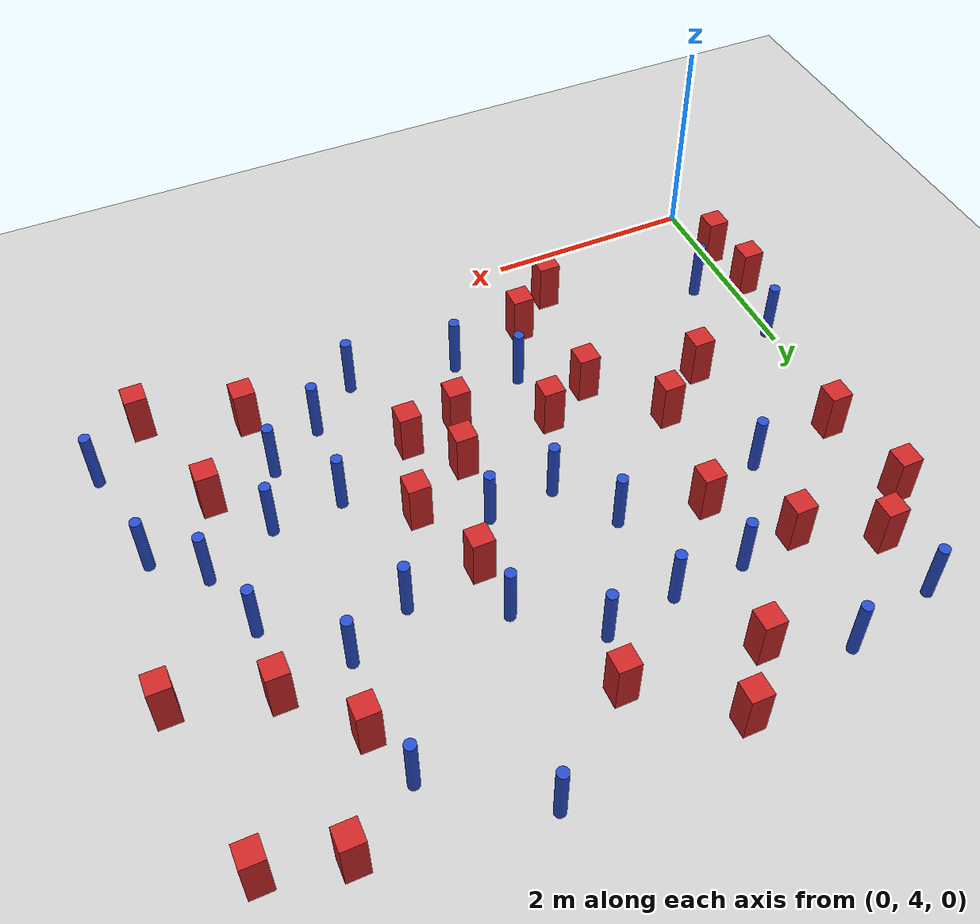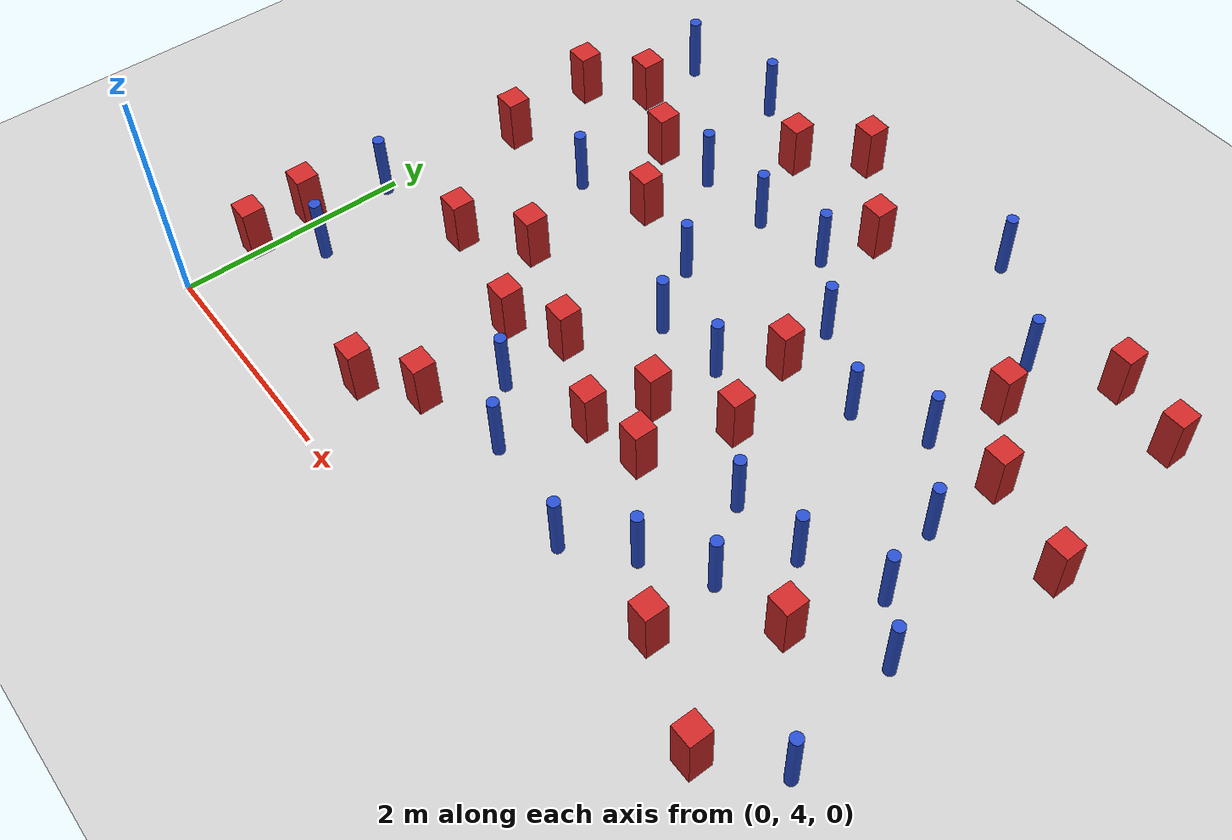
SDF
<sdf version="1.6">
 <world name="default">
  <model name="ground_plane">
   <static>1</static>
   <link name="link">
    <collision name="collision">
     <geometry><plane><normal>0 0 1</normal><size>100 100</size></plane></geometry>
     <surface><friction><ode><mu>100</mu><mu2>50</mu2></ode></friction></surface>
    </collision>
    <visual name="visual">
     <cast_shadows>0</cast_shadows>
     <geometry><plane><normal>0 0 1</normal><size>100 100</size></plane></geometry>
     <material>
      <ambient>1.0 1.0 1.0 1.0</ambient>
      <diffuse>0.8 0.8 0.8 1.0</diffuse>
      <specular>0.01 0.01 0.01 1.000000</specular>
     </material>
    </visual>
   </link>
  </model>
  <model name="square_post_obstacle0">
   <static>true</static>
   <pose>1.99020298457 8.9363868212 1.91545236811e-07 -7.35059704564e-06 1.12565212e-07 2.39332434364e-05</pose>
   <link name="link">
    <pose>0 0 0.25 0 -0 0</pose>
    <inertial>
     <mass>100</mass>
     <inertia>
      <ixx>0.166667</ixx>
      <ixy>0</ixy>
      <ixz>0</ixz>
      <iyy>0.166667</iyy>
      <iyz>0</iyz>
      <izz>0.166667</izz>
     </inertia>
    </inertial>
    <collision name="collision"><geometry><box><size>.2 .2 .5</size></box></geometry></collision>
    <visual name="visual">
     <geometry><box><size>.2 .2 .5</size></box></geometry>
     <material>
      <script><name>Gazebo/Red</name><uri>file://media/materials/scripts/gazebo.material</uri></script>
     </material>
    </visual>
   </link>
  </model>
  <model name="pole_obstacle6">
   <static>true</static>
   <pose>6.16980746209 6.17317058995 7.38925637345e-09 -8.47170692796e-08 1.24976764786e-08 -1.74513093032e-07</pose>
   <link name="link">
    <pose>0 0 0.3 0 -0 0</pose>
    <inertial>
     <mass>1</mass>
     <inertia><ixx>0.145833</ixx><ixy>0</ixy><ixz>0</ixz><iyy>0.145833</iyy><iyz>0</iyz><izz>0.125</izz></inertia>
    </inertial>
    <collision name="collision">
     <geometry><cylinder><radius>0.05</radius><length>.6</length></cylinder></geometry>
    </collision>
    <visual name="visual">
     <geometry><cylinder><radius>0.05</radius><length>.6</length></cylinder></geometry>
     <material>
      <script><name>Gazebo/Blue</name><uri>file://media/materials/scripts/gazebo.material</uri></script>
     </material>
    </visual>
   </link>
  </model>
  <model name="square_post_obstacle13">
   <static>true</static>
   <pose>0.947055316499 6.09849386532 1.91545236811e-07 -7.35059704564e-06 1.12565212e-07 2.39332434364e-05</pose>
   <link name="link">
    <pose>0 0 0.25 0 -0 0</pose>
    <inertial>
     <mass>100</mass>
     <inertia>
      <ixx>0.166667</ixx>
      <ixy>0</ixy>
      <ixz>0</ixz>
      <iyy>0.166667</iyy>
      <iyz>0</iyz>
      <izz>0.166667</izz>
     </inertia>
    </inertial>
    <collision name="collision"><geometry><box><size>.2 .2 .5</size></box></geometry></collision>
    <visual name="visual">
     <geometry><box><size>.2 .2 .5</size></box></geometry>
     <material>
      <script><name>Gazebo/Red</name><uri>file://media/materials/scripts/gazebo.material</uri></script>
     </material>
    </visual>
   </link>
  </model>
  <model name="square_post_obstacle14">
   <static>true</static>
   <pose>-0.112037463065 5.22888776063 1.91545236811e-07 -7.35059704564e-06 1.12565212e-07 2.39332434364e-05</pose>
   <link name="link">
    <pose>0 0 0.25 0 -0 0</pose>
    <inertial>
     <mass>100</mass>
     <inertia>
      <ixx>0.166667</ixx>
      <ixy>0</ixy>
      <ixz>0</ixz>
      <iyy>0.166667</iyy>
      <iyz>0</iyz>
      <izz>0.166667</izz>
     </inertia>
    </inertial>
    <collision name="collision"><geometry><box><size>.2 .2 .5</size></box></geometry></collision>
    <visual name="visual">
     <geometry><box><size>.2 .2 .5</size></box></geometry>
     <material>
      <script><name>Gazebo/Red</name><uri>file://media/materials/scripts/gazebo.material</uri></script>
     </material>
    </visual>
   </link>
  </model>
  <model name="square_post_obstacle18">
   <static>true</static>
   <pose>1.16525033121 8.103247018 1.91545236811e-07 -7.35059704564e-06 1.12565212e-07 2.39332434364e-05</pose>
   <link name="link">
    <pose>0 0 0.25 0 -0 0</pose>
    <inertial>
     <mass>100</mass>
     <inertia>
      <ixx>0.166667</ixx>
      <ixy>0</ixy>
      <ixz>0</ixz>
      <iyy>0.166667</iyy>
      <iyz>0</iyz>
      <izz>0.166667</izz>
     </inertia>
    </inertial>
    <collision name="collision"><geometry><box><size>.2 .2 .5</size></box></geometry></collision>
    <visual name="visual">
     <geometry><box><size>.2 .2 .5</size></box></geometry>
     <material>
      <script><name>Gazebo/Red</name><uri>file://media/materials/scripts/gazebo.material</uri></script>
     </material>
    </visual>
   </link>
  </model>
  <model name="pole_obstacle10">
   <static>true</static>
   <pose>4.88381314462 8.86168116422 7.38925637345e-09 -8.471706928e-08 1.24976765081e-08 -1.74513093015e-07</pose>
   <link name="link">
    <pose>0 0 0.3 0 -0 0</pose>
    <inertial>
     <mass>1</mass>
     <inertia><ixx>0.145833</ixx><ixy>0</ixy><ixz>0</ixz><iyy>0.145833</iyy><iyz>0</iyz><izz>0.125</izz></inertia>
    </inertial>
    <collision name="collision">
     <geometry><cylinder><radius>0.05</radius><length>.6</length></cylinder></geometry>
    </collision>
    <visual name="visual">
     <geometry><cylinder><radius>0.05</radius><length>.6</length></cylinder></geometry>
     <material>
      <script><name>Gazebo/Blue</name><uri>file://media/materials/scripts/gazebo.material</uri></script>
     </material>
    </visual>
   </link>
  </model>
  <model name="pole_obstacle11">
   <static>true</static>
   <pose>2.42599380312 7.3634539889 7.38925637345e-09 -8.47170692798e-08 1.24976765033e-08 -1.74513093019e-07</pose>
   <link name="link">
    <pose>0 0 0.3 0 -0 0</pose>
    <inertial>
     <mass>1</mass>
     <inertia><ixx>0.145833</ixx><ixy>0</ixy><ixz>0</ixz><iyy>0.145833</iyy><iyz>0</iyz><izz>0.125</izz></inertia>
    </inertial>
    <collision name="collision">
     <geometry><cylinder><radius>0.05</radius><length>.6</length></cylinder></geometry>
    </collision>
    <visual name="visual">
     <geometry><cylinder><radius>0.05</radius><length>.6</length></cylinder></geometry>
     <material>
      <script><name>Gazebo/Blue</name><uri>file://media/materials/scripts/gazebo.material</uri></script>
     </material>
    </visual>
   </link>
  </model>
  <model name="square_post_obstacle27">
   <static>true</static>
   <pose>5.05536792014 8.38496246622 1.91545236811e-07 -7.35059704564e-06 1.12565212e-07 2.39332434364e-05</pose>
   <link name="link">
    <pose>0 0 0.25 0 -0 0</pose>
    <inertial>
     <mass>100</mass>
     <inertia>
      <ixx>0.166667</ixx>
      <ixy>0</ixy>
      <ixz>0</ixz>
      <iyy>0.166667</iyy>
      <iyz>0</iyz>
      <izz>0.166667</izz>
     </inertia>
    </inertial>
    <collision name="collision"><geometry><box><size>.2 .2 .5</size></box></geometry></collision>
    <visual name="visual">
     <geometry><box><size>.2 .2 .5</size></box></geometry>
     <material>
      <script><name>Gazebo/Red</name><uri>file://media/materials/scripts/gazebo.material</uri></script>
     </material>
    </visual>
   </link>
  </model>
  <model name="pole_obstacle22">
   <static>true</static>
   <pose>4.49500168611 6.20427569849 7.38925637345e-09 -8.47170692796e-08 1.24976764786e-08 -1.74513093032e-07</pose>
   <link name="link">
    <pose>0 0 0.3 0 -0 0</pose>
    <inertial>
     <mass>1</mass>
     <inertia><ixx>0.145833</ixx><ixy>0</ixy><ixz>0</ixz><iyy>0.145833</iyy><iyz>0</iyz><izz>0.125</izz></inertia>
    </inertial>
    <collision name="collision">
     <geometry><cylinder><radius>0.05</radius><length>.6</length></cylinder></geometry>
    </collision>
    <visual name="visual">
     <geometry><cylinder><radius>0.05</radius><length>.6</length></cylinder></geometry>
     <material>
      <script><name>Gazebo/Blue</name><uri>file://media/materials/scripts/gazebo.material</uri></script>
     </material>
    </visual>
   </link>
  </model>
  <model name="square_post_obstacle32">
   <static>true</static>
   <pose>2.00001026528 5.86001853332 1.91545236811e-07 -7.35059704564e-06 1.12565212e-07 2.39332434364e-05</pose>
   <link name="link">
    <pose>0 0 0.25 0 -0 0</pose>
    <inertial>
     <mass>100</mass>
     <inertia>
      <ixx>0.166667</ixx>
      <ixy>0</ixy>
      <ixz>0</ixz>
      <iyy>0.166667</iyy>
      <iyz>0</iyz>
      <izz>0.166667</izz>
     </inertia>
    </inertial>
    <collision name="collision"><geometry><box><size>.2 .2 .5</size></box></geometry></collision>
    <visual name="visual">
     <geometry><box><size>.2 .2 .5</size></box></geometry>
     <material>
      <script><name>Gazebo/Red</name><uri>file://media/materials/scripts/gazebo.material</uri></script>
     </material>
    </visual>
   </link>
  </model>
  <model name="square_post_obstacle35">
   <static>true</static>
   <pose>5.52235113387 5.78093469538 1.91545236811e-07 -7.35059704564e-06 1.12565212e-07 2.39332434364e-05</pose>
   <link name="link">
    <pose>0 0 0.25 0 -0 0</pose>
    <inertial>
     <mass>100</mass>
     <inertia>
      <ixx>0.166667</ixx>
      <ixy>0</ixy>
      <ixz>0</ixz>
      <iyy>0.166667</iyy>
      <iyz>0</iyz>
      <izz>0.166667</izz>
     </inertia>
    </inertial>
    <collision name="collision"><geometry><box><size>.2 .2 .5</size></box></geometry></collision>
    <visual name="visual">
     <geometry><box><size>.2 .2 .5</size></box></geometry>
     <material>
      <script><name>Gazebo/Red</name><uri>file://media/materials/scripts/gazebo.material</uri></script>
     </material>
    </visual>
   </link>
  </model>
  <model name="square_post_obstacle38">
   <static>true</static>
   <pose>4.97445771238 5.00716723049 1.91545236811e-07 -7.35059704564e-06 1.12565212e-07 2.39332434364e-05</pose>
   <link name="link">
    <pose>0 0 0.25 0 -0 0</pose>
    <inertial>
     <mass>100</mass>
     <inertia>
      <ixx>0.166667</ixx>
      <ixy>0</ixy>
      <ixz>0</ixz>
      <iyy>0.166667</iyy>
      <iyz>0</iyz>
      <izz>0.166667</izz>
     </inertia>
    </inertial>
    <collision name="collision"><geometry><box><size>.2 .2 .5</size></box></geometry></collision>
    <visual name="visual">
     <geometry><box><size>.2 .2 .5</size></box></geometry>
     <material>
      <script><name>Gazebo/Red</name><uri>file://media/materials/scripts/gazebo.material</uri></script>
     </material>
    </visual>
   </link>
  </model>
  <model name="pole_obstacle45">
   <static>true</static>
   <pose>4.00981577223 9.48258028847 7.38925637345e-09 -8.47170692799e-08 1.24976765044e-08 -1.74513093018e-07</pose>
   <link name="link">
    <pose>0 0 0.3 0 -0 0</pose>
    <inertial>
     <mass>1</mass>
     <inertia><ixx>0.145833</ixx><ixy>0</ixy><ixz>0</ixz><iyy>0.145833</iyy><iyz>0</iyz><izz>0.125</izz></inertia>
    </inertial>
    <collision name="collision">
     <geometry><cylinder><radius>0.05</radius><length>.6</length></cylinder></geometry>
    </collision>
    <visual name="visual">
     <geometry><cylinder><radius>0.05</radius><length>.6</length></cylinder></geometry>
     <material>
      <script><name>Gazebo/Blue</name><uri>file://media/materials/scripts/gazebo.material</uri></script>
     </material>
    </visual>
   </link>
  </model>
  <model name="square_post_obstacle43">
   <static>true</static>
   <pose>6.12553239872 9.09348404291 1.91545236811e-07 -7.35059704564e-06 1.12565212e-07 2.39332434364e-05</pose>
   <link name="link">
    <pose>0 0 0.25 0 -0 0</pose>
    <inertial>
     <mass>100</mass>
     <inertia>
      <ixx>0.166667</ixx>
      <ixy>0</ixy>
      <ixz>0</ixz>
      <iyy>0.166667</iyy>
      <iyz>0</iyz>
      <izz>0.166667</izz>
     </inertia>
    </inertial>
    <collision name="collision"><geometry><box><size>.2 .2 .5</size></box></geometry></collision>
    <visual name="visual">
     <geometry><box><size>.2 .2 .5</size></box></geometry>
     <material>
      <script><name>Gazebo/Red</name><uri>file://media/materials/scripts/gazebo.material</uri></script>
     </material>
    </visual>
   </link>
  </model>
  <model name="pole_obstacle51">
   <static>true</static>
   <pose>1.32428582386 9.21189452642 7.38925637345e-09 -8.47170692798e-08 1.24976764881e-08 -1.74513093027e-07</pose>
   <link name="link">
    <pose>0 0 0.3 0 -0 0</pose>
    <inertial>
     <mass>1</mass>
     <inertia><ixx>0.145833</ixx><ixy>0</ixy><ixz>0</ixz><iyy>0.145833</iyy><iyz>0</iyz><izz>0.125</izz></inertia>
    </inertial>
    <collision name="collision">
     <geometry><cylinder><radius>0.05</radius><length>.6</length></cylinder></geometry>
    </collision>
    <visual name="visual">
     <geometry><cylinder><radius>0.05</radius><length>.6</length></cylinder></geometry>
     <material>
      <script><name>Gazebo/Blue</name><uri>file://media/materials/scripts/gazebo.material</uri></script>
     </material>
    </visual>
   </link>
  </model>
  <model name="square_post_obstacle55">
   <static>true</static>
   <pose>3.23925105209 5.76845098162 1.91545236811e-07 -7.35059704564e-06 1.12565212e-07 2.39332434364e-05</pose>
   <link name="link">
    <pose>0 0 0.25 0 -0 0</pose>
    <inertial>
     <mass>100</mass>
     <inertia>
      <ixx>0.166667</ixx>
      <ixy>0</ixy>
      <ixz>0</ixz>
      <iyy>0.166667</iyy>
      <iyz>0</iyz>
      <izz>0.166667</izz>
     </inertia>
    </inertial>
    <collision name="collision"><geometry><box><size>.2 .2 .5</size></box></geometry></collision>
    <visual name="visual">
     <geometry><box><size>.2 .2 .5</size></box></geometry>
     <material>
      <script><name>Gazebo/Red</name><uri>file://media/materials/scripts/gazebo.material</uri></script>
     </material>
    </visual>
   </link>
  </model>
  <model name="square_post_obstacle57">
   <static>true</static>
   <pose>-0.0440668381316 4.68143036832 1.91545236811e-07 -7.35059704564e-06 1.12565212e-07 2.39332434364e-05</pose>
   <link name="link">
    <pose>0 0 0.25 0 -0 0</pose>
    <inertial>
     <mass>100</mass>
     <inertia>
      <ixx>0.166667</ixx>
      <ixy>0</ixy>
      <ixz>0</ixz>
      <iyy>0.166667</iyy>
      <iyz>0</iyz>
      <izz>0.166667</izz>
     </inertia>
    </inertial>
    <collision name="collision"><geometry><box><size>.2 .2 .5</size></box></geometry></collision>
    <visual name="visual">
     <geometry><box><size>.2 .2 .5</size></box></geometry>
     <material>
      <script><name>Gazebo/Red</name><uri>file://media/materials/scripts/gazebo.material</uri></script>
     </material>
    </visual>
   </link>
  </model>
  <model name="square_post_obstacle60">
   <static>true</static>
   <pose>2.41404011743 9.42373156853 1.91545236811e-07 -7.35059704564e-06 1.12565212e-07 2.39332434364e-05</pose>
   <link name="link">
    <pose>0 0 0.25 0 -0 0</pose>
    <inertial>
     <mass>100</mass>
     <inertia>
      <ixx>0.166667</ixx>
      <ixy>0</ixy>
      <ixz>0</ixz>
      <iyy>0.166667</iyy>
      <iyz>0</iyz>
      <izz>0.166667</izz>
     </inertia>
    </inertial>
    <collision name="collision"><geometry><box><size>.2 .2 .5</size></box></geometry></collision>
    <visual name="visual">
     <geometry><box><size>.2 .2 .5</size></box></geometry>
     <material>
      <script><name>Gazebo/Red</name><uri>file://media/materials/scripts/gazebo.material</uri></script>
     </material>
    </visual>
   </link>
  </model>
  <model name="square_post_obstacle61">
   <static>true</static>
   <pose>6.37324187477 7.58431328695 1.91545236811e-07 -7.35059704564e-06 1.12565212e-07 2.39332434364e-05</pose>
   <link name="link">
    <pose>0 0 0.25 0 -0 0</pose>
    <inertial>
     <mass>100</mass>
     <inertia>
      <ixx>0.166667</ixx>
      <ixy>0</ixy>
      <ixz>0</ixz>
      <iyy>0.166667</iyy>
      <iyz>0</iyz>
      <izz>0.166667</izz>
     </inertia>
    </inertial>
    <collision name="collision"><geometry><box><size>.2 .2 .5</size></box></geometry></collision>
    <visual name="visual">
     <geometry><box><size>.2 .2 .5</size></box></geometry>
     <material>
      <script><name>Gazebo/Red</name><uri>file://media/materials/scripts/gazebo.material</uri></script>
     </material>
    </visual>
   </link>
  </model>
  <model name="pole_obstacle58">
   <static>true</static>
   <pose>0.038327403687 5.90514391781 7.38925637345e-09 -8.471706928e-08 1.2497676505e-08 -1.74513093019e-07</pose>
   <link name="link">
    <pose>0 0 0.3 0 -0 0</pose>
    <inertial>
     <mass>1</mass>
     <inertia><ixx>0.145833</ixx><ixy>0</ixy><ixz>0</ixz><iyy>0.145833</iyy><iyz>0</iyz><izz>0.125</izz></inertia>
    </inertial>
    <collision name="collision">
     <geometry><cylinder><radius>0.05</radius><length>.6</length></cylinder></geometry>
    </collision>
    <visual name="visual">
     <geometry><cylinder><radius>0.05</radius><length>.6</length></cylinder></geometry>
     <material>
      <script><name>Gazebo/Blue</name><uri>file://media/materials/scripts/gazebo.material</uri></script>
     </material>
    </visual>
   </link>
  </model>
  <model name="pole_obstacle63">
   <static>true</static>
   <pose>4.4237340085 5.33318457855 7.38925637345e-09 -8.47170692796e-08 1.24976764786e-08 -1.74513093032e-07</pose>
   <link name="link">
    <pose>0 0 0.3 0 -0 0</pose>
    <inertial>
     <mass>1</mass>
     <inertia><ixx>0.145833</ixx><ixy>0</ixy><ixz>0</ixz><iyy>0.145833</iyy><iyz>0</iyz><izz>0.125</izz></inertia>
    </inertial>
    <collision name="collision">
     <geometry><cylinder><radius>0.05</radius><length>.6</length></cylinder></geometry>
    </collision>
    <visual name="visual">
     <geometry><cylinder><radius>0.05</radius><length>.6</length></cylinder></geometry>
     <material>
      <script><name>Gazebo/Blue</name><uri>file://media/materials/scripts/gazebo.material</uri></script>
     </material>
    </visual>
   </link>
  </model>
  <model name="pole_obstacle75">
   <static>true</static>
   <pose>3.96847444776 4.94687574597 7.38925637345e-09 -8.47170692798e-08 1.24976764915e-08 -1.74513093026e-07</pose>
   <link name="link">
    <pose>0 0 0.3 0 -0 0</pose>
    <inertial>
     <mass>1</mass>
     <inertia><ixx>0.145833</ixx><ixy>0</ixy><ixz>0</ixz><iyy>0.145833</iyy><iyz>0</iyz><izz>0.125</izz></inertia>
    </inertial>
    <collision name="collision">
     <geometry><cylinder><radius>0.05</radius><length>.6</length></cylinder></geometry>
    </collision>
    <visual name="visual">
     <geometry><cylinder><radius>0.05</radius><length>.6</length></cylinder></geometry>
     <material>
      <script><name>Gazebo/Blue</name><uri>file://media/materials/scripts/gazebo.material</uri></script>
     </material>
    </visual>
   </link>
  </model>
  <model name="pole_obstacle76">
   <static>true</static>
   <pose>0.372016328345 5.09658520721 7.38925637345e-09 -8.471706928e-08 1.24976765079e-08 -1.74513093015e-07</pose>
   <link name="link">
    <pose>0 0 0.3 0 -0 0</pose>
    <inertial>
     <mass>1</mass>
     <inertia><ixx>0.145833</ixx><ixy>0</ixy><ixz>0</ixz><iyy>0.145833</iyy><iyz>0</iyz><izz>0.125</izz></inertia>
    </inertial>
    <collision name="collision">
     <geometry><cylinder><radius>0.05</radius><length>.6</length></cylinder></geometry>
    </collision>
    <visual name="visual">
     <geometry><cylinder><radius>0.05</radius><length>.6</length></cylinder></geometry>
     <material>
      <script><name>Gazebo/Blue</name><uri>file://media/materials/scripts/gazebo.material</uri></script>
     </material>
    </visual>
   </link>
  </model>
  <model name="pole_obstacle78">
   <static>true</static>
   <pose>3.02912214632 8.33232185064 7.38925637345e-09 -8.47170692793e-08 1.24976764408e-08 -1.74513093041e-07</pose>
   <link name="link">
    <pose>0 0 0.3 0 -0 0</pose>
    <inertial>
     <mass>1</mass>
     <inertia><ixx>0.145833</ixx><ixy>0</ixy><ixz>0</ixz><iyy>0.145833</iyy><iyz>0</iyz><izz>0.125</izz></inertia>
    </inertial>
    <collision name="collision">
     <geometry><cylinder><radius>0.05</radius><length>.6</length></cylinder></geometry>
    </collision>
    <visual name="visual">
     <geometry><cylinder><radius>0.05</radius><length>.6</length></cylinder></geometry>
     <material>
      <script><name>Gazebo/Blue</name><uri>file://media/materials/scripts/gazebo.material</uri></script>
     </material>
    </visual>
   </link>
  </model>
  <model name="pole_obstacle102">
   <static>true</static>
   <pose>3.40522608948 6.88542766014 7.38925637345e-09 -8.47170692798e-08 1.24976765033e-08 -1.74513093019e-07</pose>
   <link name="link">
    <pose>0 0 0.3 0 -0 0</pose>
    <inertial>
     <mass>1</mass>
     <inertia><ixx>0.145833</ixx><ixy>0</ixy><ixz>0</ixz><iyy>0.145833</iyy><iyz>0</iyz><izz>0.125</izz></inertia>
    </inertial>
    <collision name="collision">
     <geometry><cylinder><radius>0.05</radius><length>.6</length></cylinder></geometry>
    </collision>
    <visual name="visual">
     <geometry><cylinder><radius>0.05</radius><length>.6</length></cylinder></geometry>
     <material>
      <script><name>Gazebo/Blue</name><uri>file://media/materials/scripts/gazebo.material</uri></script>
     </material>
    </visual>
   </link>
  </model>
  <model name="pole_obstacle106">
   <static>true</static>
   <pose>2.36874512764 8.22493178309 7.38925637345e-09 -8.47170692793e-08 1.24976764408e-08 -1.74513093041e-07</pose>
   <link name="link">
    <pose>0 0 0.3 0 -0 0</pose>
    <inertial>
     <mass>1</mass>
     <inertia><ixx>0.145833</ixx><ixy>0</ixy><ixz>0</ixz><iyy>0.145833</iyy><iyz>0</iyz><izz>0.125</izz></inertia>
    </inertial>
    <collision name="collision">
     <geometry><cylinder><radius>0.05</radius><length>.6</length></cylinder></geometry>
    </collision>
    <visual name="visual">
     <geometry><cylinder><radius>0.05</radius><length>.6</length></cylinder></geometry>
     <material>
      <script><name>Gazebo/Blue</name><uri>file://media/materials/scripts/gazebo.material</uri></script>
     </material>
    </visual>
   </link>
  </model>
  <model name="pole_obstacle107">
   <static>true</static>
   <pose>6.35493137794 5.12069562702 7.38925637345e-09 -8.47170692796e-08 1.24976764786e-08 -1.74513093032e-07</pose>
   <link name="link">
    <pose>0 0 0.3 0 -0 0</pose>
    <inertial>
     <mass>1</mass>
     <inertia><ixx>0.145833</ixx><ixy>0</ixy><ixz>0</ixz><iyy>0.145833</iyy><iyz>0</iyz><izz>0.125</izz></inertia>
    </inertial>
    <collision name="collision">
     <geometry><cylinder><radius>0.05</radius><length>.6</length></cylinder></geometry>
    </collision>
    <visual name="visual">
     <geometry><cylinder><radius>0.05</radius><length>.6</length></cylinder></geometry>
     <material>
      <script><name>Gazebo/Blue</name><uri>file://media/materials/scripts/gazebo.material</uri></script>
     </material>
    </visual>
   </link>
  </model>
  <model name="pole_obstacle110">
   <static>true</static>
   <pose>2.79018038874 6.83040456094 7.38925637345e-09 -8.47170692798e-08 1.24976765033e-08 -1.74513093019e-07</pose>
   <link name="link">
    <pose>0 0 0.3 0 -0 0</pose>
    <inertial>
     <mass>1</mass>
     <inertia><ixx>0.145833</ixx><ixy>0</ixy><ixz>0</ixz><iyy>0.145833</iyy><iyz>0</iyz><izz>0.125</izz></inertia>
    </inertial>
    <collision name="collision">
     <geometry><cylinder><radius>0.05</radius><length>.6</length></cylinder></geometry>
    </collision>
    <visual name="visual">
     <geometry><cylinder><radius>0.05</radius><length>.6</length></cylinder></geometry>
     <material>
      <script><name>Gazebo/Blue</name><uri>file://media/materials/scripts/gazebo.material</uri></script>
     </material>
    </visual>
   </link>
  </model>
  <model name="square_post_obstacle100">
   <static>true</static>
   <pose>1.79534412347 4.59141570505 1.91545236811e-07 -7.35059704564e-06 1.12565212e-07 2.39332434364e-05</pose>
   <link name="link">
    <pose>0 0 0.25 0 -0 0</pose>
    <inertial>
     <mass>100</mass>
     <inertia>
      <ixx>0.166667</ixx>
      <ixy>0</ixy>
      <ixz>0</ixz>
      <iyy>0.166667</iyy>
      <iyz>0</iyz>
      <izz>0.166667</izz>
     </inertia>
    </inertial>
    <collision name="collision"><geometry><box><size>.2 .2 .5</size></box></geometry></collision>
    <visual name="visual">
     <geometry><box><size>.2 .2 .5</size></box></geometry>
     <material>
      <script><name>Gazebo/Red</name><uri>file://media/materials/scripts/gazebo.material</uri></script>
     </material>
    </visual>
   </link>
  </model>
  <model name="pole_obstacle116">
   <static>true</static>
   <pose>4.37862728378 7.44336205832 7.38925637345e-09 -8.47170692796e-08 1.24976764786e-08 -1.74513093032e-07</pose>
   <link name="link">
    <pose>0 0 0.3 0 -0 0</pose>
    <inertial>
     <mass>1</mass>
     <inertia><ixx>0.145833</ixx><ixy>0</ixy><ixz>0</ixz><iyy>0.145833</iyy><iyz>0</iyz><izz>0.125</izz></inertia>
    </inertial>
    <collision name="collision">
     <geometry><cylinder><radius>0.05</radius><length>.6</length></cylinder></geometry>
    </collision>
    <visual name="visual">
     <geometry><cylinder><radius>0.05</radius><length>.6</length></cylinder></geometry>
     <material>
      <script><name>Gazebo/Blue</name><uri>file://media/materials/scripts/gazebo.material</uri></script>
     </material>
    </visual>
   </link>
  </model>
  <model name="square_post_obstacle106">
   <static>true</static>
   <pose>3.16924433621 8.81471888307 1.91545236811e-07 -7.35059704564e-06 1.12565212e-07 2.39332434364e-05</pose>
   <link name="link">
    <pose>0 0 0.25 0 -0 0</pose>
    <inertial>
     <mass>100</mass>
     <inertia>
      <ixx>0.166667</ixx>
      <ixy>0</ixy>
      <ixz>0</ixz>
      <iyy>0.166667</iyy>
      <iyz>0</iyz>
      <izz>0.166667</izz>
     </inertia>
    </inertial>
    <collision name="collision"><geometry><box><size>.2 .2 .5</size></box></geometry></collision>
    <visual name="visual">
     <geometry><box><size>.2 .2 .5</size></box></geometry>
     <material>
      <script><name>Gazebo/Red</name><uri>file://media/materials/scripts/gazebo.material</uri></script>
     </material>
    </visual>
   </link>
  </model>
  <model name="pole_obstacle127">
   <static>true</static>
   <pose>1.0425724639 7.29478614006 7.38925637345e-09 -8.47170692799e-08 1.24976765021e-08 -1.74513093019e-07</pose>
   <link name="link">
    <pose>0 0 0.3 0 -0 0</pose>
    <inertial>
     <mass>1</mass>
     <inertia><ixx>0.145833</ixx><ixy>0</ixy><ixz>0</ixz><iyy>0.145833</iyy><iyz>0</iyz><izz>0.125</izz></inertia>
    </inertial>
    <collision name="collision">
     <geometry><cylinder><radius>0.05</radius><length>.6</length></cylinder></geometry>
    </collision>
    <visual name="visual">
     <geometry><cylinder><radius>0.05</radius><length>.6</length></cylinder></geometry>
     <material>
      <script><name>Gazebo/Blue</name><uri>file://media/materials/scripts/gazebo.material</uri></script>
     </material>
    </visual>
   </link>
  </model>
  <model name="pole_obstacle128">
   <static>true</static>
   <pose>5.75253897023 6.52076620754 7.38925637345e-09 -8.47170692796e-08 1.24976764786e-08 -1.74513093032e-07</pose>
   <link name="link">
    <pose>0 0 0.3 0 -0 0</pose>
    <inertial>
     <mass>1</mass>
     <inertia><ixx>0.145833</ixx><ixy>0</ixy><ixz>0</ixz><iyy>0.145833</iyy><iyz>0</iyz><izz>0.125</izz></inertia>
    </inertial>
    <collision name="collision">
     <geometry><cylinder><radius>0.05</radius><length>.6</length></cylinder></geometry>
    </collision>
    <visual name="visual">
     <geometry><cylinder><radius>0.05</radius><length>.6</length></cylinder></geometry>
     <material>
      <script><name>Gazebo/Blue</name><uri>file://media/materials/scripts/gazebo.material</uri></script>
     </material>
    </visual>
   </link>
  </model>
  <model name="pole_obstacle135">
   <static>true</static>
   <pose>2.49891222209 5.48955628942 7.38925637345e-09 -8.47170692798e-08 1.24976765033e-08 -1.74513093019e-07</pose>
   <link name="link">
    <pose>0 0 0.3 0 -0 0</pose>
    <inertial>
     <mass>1</mass>
     <inertia><ixx>0.145833</ixx><ixy>0</ixy><ixz>0</ixz><iyy>0.145833</iyy><iyz>0</iyz><izz>0.125</izz></inertia>
    </inertial>
    <collision name="collision">
     <geometry><cylinder><radius>0.05</radius><length>.6</length></cylinder></geometry>
    </collision>
    <visual name="visual">
     <geometry><cylinder><radius>0.05</radius><length>.6</length></cylinder></geometry>
     <material>
      <script><name>Gazebo/Blue</name><uri>file://media/materials/scripts/gazebo.material</uri></script>
     </material>
    </visual>
   </link>
  </model>
  <model name="square_post_obstacle116">
   <static>true</static>
   <pose>0.191159308041 7.17806644672 1.91545236811e-07 -7.35059704564e-06 1.12565212e-07 2.39332434364e-05</pose>
   <link name="link">
    <pose>0 0 0.25 0 -0 0</pose>
    <inertial>
     <mass>100</mass>
     <inertia>
      <ixx>0.166667</ixx>
      <ixy>0</ixy>
      <ixz>0</ixz>
      <iyy>0.166667</iyy>
      <iyz>0</iyz>
      <izz>0.166667</izz>
     </inertia>
    </inertial>
    <collision name="collision"><geometry><box><size>.2 .2 .5</size></box></geometry></collision>
    <visual name="visual">
     <geometry><box><size>.2 .2 .5</size></box></geometry>
     <material>
      <script><name>Gazebo/Red</name><uri>file://media/materials/scripts/gazebo.material</uri></script>
     </material>
    </visual>
   </link>
  </model>
  <model name="square_post_obstacle137">
   <static>true</static>
   <pose>5.55254809147 7.8212834985 1.91545236811e-07 -7.35059704564e-06 1.12565212e-07 2.39332434364e-05</pose>
   <link name="link">
    <pose>0 0 0.25 0 -0 0</pose>
    <inertial>
     <mass>100</mass>
     <inertia>
      <ixx>0.166667</ixx>
      <ixy>0</ixy>
      <ixz>0</ixz>
      <iyy>0.166667</iyy>
      <iyz>0</iyz>
      <izz>0.166667</izz>
     </inertia>
    </inertial>
    <collision name="collision"><geometry><box><size>.2 .2 .5</size></box></geometry></collision>
    <visual name="visual">
     <geometry><box><size>.2 .2 .5</size></box></geometry>
     <material>
      <script><name>Gazebo/Red</name><uri>file://media/materials/scripts/gazebo.material</uri></script>
     </material>
    </visual>
   </link>
  </model>
  <model name="square_post_obstacle140">
   <static>true</static>
   <pose>0.0830916929346 8.04364694045 1.91545236811e-07 -7.35059704564e-06 1.12565212e-07 2.39332434364e-05</pose>
   <link name="link">
    <pose>0 0 0.25 0 -0 0</pose>
    <inertial>
     <mass>100</mass>
     <inertia>
      <ixx>0.166667</ixx>
      <ixy>0</ixy>
      <ixz>0</ixz>
      <iyy>0.166667</iyy>
      <iyz>0</iyz>
      <izz>0.166667</izz>
     </inertia>
    </inertial>
    <collision name="collision"><geometry><box><size>.2 .2 .5</size></box></geometry></collision>
    <visual name="visual">
     <geometry><box><size>.2 .2 .5</size></box></geometry>
     <material>
      <script><name>Gazebo/Red</name><uri>file://media/materials/scripts/gazebo.material</uri></script>
     </material>
    </visual>
   </link>
  </model>
  <model name="pole_obstacle156">
   <static>true</static>
   <pose>3.65130878749 7.83848110295 7.38925637345e-09 -8.47170692798e-08 1.24976765033e-08 -1.74513093019e-07</pose>
   <link name="link">
    <pose>0 0 0.3 0 -0 0</pose>
    <inertial>
     <mass>1</mass>
     <inertia><ixx>0.145833</ixx><ixy>0</ixy><ixz>0</ixz><iyy>0.145833</iyy><iyz>0</iyz><izz>0.125</izz></inertia>
    </inertial>
    <collision name="collision">
     <geometry><cylinder><radius>0.05</radius><length>.6</length></cylinder></geometry>
    </collision>
    <visual name="visual">
     <geometry><cylinder><radius>0.05</radius><length>.6</length></cylinder></geometry>
     <material>
      <script><name>Gazebo/Blue</name><uri>file://media/materials/scripts/gazebo.material</uri></script>
     </material>
    </visual>
   </link>
  </model>
  <model name="square_post_obstacle150">
   <static>true</static>
   <pose>5.86073012109 4.68006630033 1.91545236811e-07 -7.35059704564e-06 1.12565212e-07 2.39332434364e-05</pose>
   <link name="link">
    <pose>0 0 0.25 0 -0 0</pose>
    <inertial>
     <mass>100</mass>
     <inertia>
      <ixx>0.166667</ixx>
      <ixy>0</ixy>
      <ixz>0</ixz>
      <iyy>0.166667</iyy>
      <iyz>0</iyz>
      <izz>0.166667</izz>
     </inertia>
    </inertial>
    <collision name="collision"><geometry><box><size>.2 .2 .5</size></box></geometry></collision>
    <visual name="visual">
     <geometry><box><size>.2 .2 .5</size></box></geometry>
     <material>
      <script><name>Gazebo/Red</name><uri>file://media/materials/scripts/gazebo.material</uri></script>
     </material>
    </visual>
   </link>
  </model>
  <model name="square_post_obstacle151">
   <static>true</static>
   <pose>5.48302333761 9.25082555628 1.91545236811e-07 -7.35059704564e-06 1.12565212e-07 2.39332434364e-05</pose>
   <link name="link">
    <pose>0 0 0.25 0 -0 0</pose>
    <inertial>
     <mass>100</mass>
     <inertia>
      <ixx>0.166667</ixx>
      <ixy>0</ixy>
      <ixz>0</ixz>
      <iyy>0.166667</iyy>
      <iyz>0</iyz>
      <izz>0.166667</izz>
     </inertia>
    </inertial>
    <collision name="collision"><geometry><box><size>.2 .2 .5</size></box></geometry></collision>
    <visual name="visual">
     <geometry><box><size>.2 .2 .5</size></box></geometry>
     <material>
      <script><name>Gazebo/Red</name><uri>file://media/materials/scripts/gazebo.material</uri></script>
     </material>
    </visual>
   </link>
  </model>
  <model name="square_post_obstacle152">
   <static>true</static>
   <pose>3.69757697838 7.33962806094 1.91545236811e-07 -7.35059704564e-06 1.12565212e-07 2.39332434364e-05</pose>
   <link name="link">
    <pose>0 0 0.25 0 -0 0</pose>
    <inertial>
     <mass>100</mass>
     <inertia>
      <ixx>0.166667</ixx>
      <ixy>0</ixy>
      <ixz>0</ixz>
      <iyy>0.166667</iyy>
      <iyz>0</iyz>
      <izz>0.166667</izz>
     </inertia>
    </inertial>
    <collision name="collision"><geometry><box><size>.2 .2 .5</size></box></geometry></collision>
    <visual name="visual">
     <geometry><box><size>.2 .2 .5</size></box></geometry>
     <material>
      <script><name>Gazebo/Red</name><uri>file://media/materials/scripts/gazebo.material</uri></script>
     </material>
    </visual>
   </link>
  </model>
  <model name="square_post_obstacle156">
   <static>true</static>
   <pose>3.38527021186 6.27252516093 1.91545236811e-07 -7.35059704564e-06 1.12565212e-07 2.39332434364e-05</pose>
   <link name="link">
    <pose>0 0 0.25 0 -0 0</pose>
    <inertial>
     <mass>100</mass>
     <inertia>
      <ixx>0.166667</ixx>
      <ixy>0</ixy>
      <ixz>0</ixz>
      <iyy>0.166667</iyy>
      <iyz>0</iyz>
      <izz>0.166667</izz>
     </inertia>
    </inertial>
    <collision name="collision"><geometry><box><size>.2 .2 .5</size></box></geometry></collision>
    <visual name="visual">
     <geometry><box><size>.2 .2 .5</size></box></geometry>
     <material>
      <script><name>Gazebo/Red</name><uri>file://media/materials/scripts/gazebo.material</uri></script>
     </material>
    </visual>
   </link>
  </model>
  <model name="pole_obstacle174">
   <static>true</static>
   <pose>1.69760334319 8.1815824738 7.38925637345e-09 -8.47170692798e-08 1.24976764881e-08 -1.74513093027e-07</pose>
   <link name="link">
    <pose>0 0 0.3 0 -0 0</pose>
    <inertial>
     <mass>1</mass>
     <inertia><ixx>0.145833</ixx><ixy>0</ixy><ixz>0</ixz><iyy>0.145833</iyy><iyz>0</iyz><izz>0.125</izz></inertia>
    </inertial>
    <collision name="collision">
     <geometry><cylinder><radius>0.05</radius><length>.6</length></cylinder></geometry>
    </collision>
    <visual name="visual">
     <geometry><cylinder><radius>0.05</radius><length>.6</length></cylinder></geometry>
     <material>
      <script><name>Gazebo/Blue</name><uri>file://media/materials/scripts/gazebo.material</uri></script>
     </material>
    </visual>
   </link>
  </model>
  <model name="square_post_obstacle164">
   <static>true</static>
   <pose>3.7409412789 5.86140878984 1.91545236811e-07 -7.35059704564e-06 1.12565212e-07 2.39332434364e-05</pose>
   <link name="link">
    <pose>0 0 0.25 0 -0 0</pose>
    <inertial>
     <mass>100</mass>
     <inertia>
      <ixx>0.166667</ixx>
      <ixy>0</ixy>
      <ixz>0</ixz>
      <iyy>0.166667</iyy>
      <iyz>0</iyz>
      <izz>0.166667</izz>
     </inertia>
    </inertial>
    <collision name="collision"><geometry><box><size>.2 .2 .5</size></box></geometry></collision>
    <visual name="visual">
     <geometry><box><size>.2 .2 .5</size></box></geometry>
     <material>
      <script><name>Gazebo/Red</name><uri>file://media/materials/scripts/gazebo.material</uri></script>
     </material>
    </visual>
   </link>
  </model>
  <model name="pole_obstacle175">
   <static>true</static>
   <pose>0.467057330307 9.01841752403 7.38925637345e-09 -8.47170692797e-08 1.24976764852e-08 -1.74513093028e-07</pose>
   <link name="link">
    <pose>0 0 0.3 0 -0 0</pose>
    <inertial>
     <mass>1</mass>
     <inertia><ixx>0.145833</ixx><ixy>0</ixy><ixz>0</ixz><iyy>0.145833</iyy><iyz>0</iyz><izz>0.125</izz></inertia>
    </inertial>
    <collision name="collision">
     <geometry><cylinder><radius>0.05</radius><length>.6</length></cylinder></geometry>
    </collision>
    <visual name="visual">
     <geometry><cylinder><radius>0.05</radius><length>.6</length></cylinder></geometry>
     <material>
      <script><name>Gazebo/Blue</name><uri>file://media/materials/scripts/gazebo.material</uri></script>
     </material>
    </visual>
   </link>
  </model>
  <model name="pole_obstacle178">
   <static>true</static>
   <pose>4.94600683975 7.72974636067 7.38925637345e-09 -8.47170692796e-08 1.24976764786e-08 -1.74513093032e-07</pose>
   <link name="link">
    <pose>0 0 0.3 0 -0 0</pose>
    <inertial>
     <mass>1</mass>
     <inertia><ixx>0.145833</ixx><ixy>0</ixy><ixz>0</ixz><iyy>0.145833</iyy><iyz>0</iyz><izz>0.125</izz></inertia>
    </inertial>
    <collision name="collision">
     <geometry><cylinder><radius>0.05</radius><length>.6</length></cylinder></geometry>
    </collision>
    <visual name="visual">
     <geometry><cylinder><radius>0.05</radius><length>.6</length></cylinder></geometry>
     <material>
      <script><name>Gazebo/Blue</name><uri>file://media/materials/scripts/gazebo.material</uri></script>
     </material>
    </visual>
   </link>
  </model>
  <model name="square_post_obstacle169">
   <static>true</static>
   <pose>1.67446310713 7.52096902511 1.91545236811e-07 -7.35059704564e-06 1.12565212e-07 2.39332434364e-05</pose>
   <link name="link">
    <pose>0 0 0.25 0 -0 0</pose>
    <inertial>
     <mass>100</mass>
     <inertia>
      <ixx>0.166667</ixx>
      <ixy>0</ixy>
      <ixz>0</ixz>
      <iyy>0.166667</iyy>
      <iyz>0</iyz>
      <izz>0.166667</izz>
     </inertia>
    </inertial>
    <collision name="collision"><geometry><box><size>.2 .2 .5</size></box></geometry></collision>
    <visual name="visual">
     <geometry><box><size>.2 .2 .5</size></box></geometry>
     <material>
      <script><name>Gazebo/Red</name><uri>file://media/materials/scripts/gazebo.material</uri></script>
     </material>
    </visual>
   </link>
  </model>
  <model name="square_post_obstacle172">
   <static>true</static>
   <pose>0.503794099636 8.43590900523 1.91545236811e-07 -7.35059704564e-06 1.12565212e-07 2.39332434364e-05</pose>
   <link name="link">
    <pose>0 0 0.25 0 -0 0</pose>
    <inertial>
     <mass>100</mass>
     <inertia>
      <ixx>0.166667</ixx>
      <ixy>0</ixy>
      <ixz>0</ixz>
      <iyy>0.166667</iyy>
      <iyz>0</iyz>
      <izz>0.166667</izz>
     </inertia>
    </inertial>
    <collision name="collision"><geometry><box><size>.2 .2 .5</size></box></geometry></collision>
    <visual name="visual">
     <geometry><box><size>.2 .2 .5</size></box></geometry>
     <material>
      <script><name>Gazebo/Red</name><uri>file://media/materials/scripts/gazebo.material</uri></script>
     </material>
    </visual>
   </link>
  </model>
  <model name="square_post_obstacle193">
   <static>true</static>
   <pose>1.46857427724 6.4735210692 1.91545236811e-07 -7.35059704564e-06 1.12565212e-07 2.39332434364e-05</pose>
   <link name="link">
    <pose>0 0 0.25 0 -0 0</pose>
    <inertial>
     <mass>100</mass>
     <inertia>
      <ixx>0.166667</ixx>
      <ixy>0</ixy>
      <ixz>0</ixz>
      <iyy>0.166667</iyy>
      <iyz>0</iyz>
      <izz>0.166667</izz>
     </inertia>
    </inertial>
    <collision name="collision"><geometry><box><size>.2 .2 .5</size></box></geometry></collision>
    <visual name="visual">
     <geometry><box><size>.2 .2 .5</size></box></geometry>
     <material>
      <script><name>Gazebo/Red</name><uri>file://media/materials/scripts/gazebo.material</uri></script>
     </material>
    </visual>
   </link>
  </model>
  <model name="square_post_obstacle198">
   <static>true</static>
   <pose>3.95756379423 6.6205712842 1.91545236811e-07 -7.35059704564e-06 1.12565212e-07 2.39332434364e-05</pose>
   <link name="link">
    <pose>0 0 0.25 0 -0 0</pose>
    <inertial>
     <mass>100</mass>
     <inertia>
      <ixx>0.166667</ixx>
      <ixy>0</ixy>
      <ixz>0</ixz>
      <iyy>0.166667</iyy>
      <iyz>0</iyz>
      <izz>0.166667</izz>
     </inertia>
    </inertial>
    <collision name="collision"><geometry><box><size>.2 .2 .5</size></box></geometry></collision>
    <visual name="visual">
     <geometry><box><size>.2 .2 .5</size></box></geometry>
     <material>
      <script><name>Gazebo/Red</name><uri>file://media/materials/scripts/gazebo.material</uri></script>
     </material>
    </visual>
   </link>
  </model>
  <model name="square_post_obstacle199">
   <static>true</static>
   <pose>2.21977119821 4.91176257813 1.91545236811e-07 -7.35059704564e-06 1.12565212e-07 2.39332434364e-05</pose>
   <link name="link">
    <pose>0 0 0.25 0 -0 0</pose>
    <inertial>
     <mass>100</mass>
     <inertia>
      <ixx>0.166667</ixx>
      <ixy>0</ixy>
      <ixz>0</ixz>
      <iyy>0.166667</iyy>
      <iyz>0</iyz>
      <izz>0.166667</izz>
     </inertia>
    </inertial>
    <collision name="collision"><geometry><box><size>.2 .2 .5</size></box></geometry></collision>
    <visual name="visual">
     <geometry><box><size>.2 .2 .5</size></box></geometry>
     <material>
      <script><name>Gazebo/Red</name><uri>file://media/materials/scripts/gazebo.material</uri></script>
     </material>
    </visual>
   </link>
  </model>
  <model name="pole_obstacle188">
   <static>true</static>
   <pose>5.54362406153 7.15720292834 7.38925637345e-09 -8.47170692796e-08 1.24976764786e-08 -1.74513093032e-07</pose>
   <link name="link">
    <pose>0 0 0.3 0 -0 0</pose>
    <inertial>
     <mass>1</mass>
     <inertia><ixx>0.145833</ixx><ixy>0</ixy><ixz>0</ixz><iyy>0.145833</iyy><iyz>0</iyz><izz>0.125</izz></inertia>
    </inertial>
    <collision name="collision">
     <geometry><cylinder><radius>0.05</radius><length>.6</length></cylinder></geometry>
    </collision>
    <visual name="visual">
     <geometry><cylinder><radius>0.05</radius><length>.6</length></cylinder></geometry>
     <material>
      <script><name>Gazebo/Blue</name><uri>file://media/materials/scripts/gazebo.material</uri></script>
     </material>
    </visual>
   </link>
  </model>
  <model name="pole_obstacle197">
   <static>true</static>
   <pose>5.12544429567 6.24664972188 7.38925637345e-09 -8.47170692796e-08 1.24976764786e-08 -1.74513093032e-07</pose>
   <link name="link">
    <pose>0 0 0.3 0 -0 0</pose>
    <inertial>
     <mass>1</mass>
     <inertia><ixx>0.145833</ixx><ixy>0</ixy><ixz>0</ixz><iyy>0.145833</iyy><iyz>0</iyz><izz>0.125</izz></inertia>
    </inertial>
    <collision name="collision">
     <geometry><cylinder><radius>0.05</radius><length>.6</length></cylinder></geometry>
    </collision>
    <visual name="visual">
     <geometry><cylinder><radius>0.05</radius><length>.6</length></cylinder></geometry>
     <material>
      <script><name>Gazebo/Blue</name><uri>file://media/materials/scripts/gazebo.material</uri></script>
     </material>
    </visual>
   </link>
  </model>
  <model name="pole_obstacle224">
   <static>true</static>
   <pose>4.91937240295 5.64342490279 7.38925637345e-09 -8.47170692796e-08 1.24976764786e-08 -1.74513093032e-07</pose>
   <link name="link">
    <pose>0 0 0.3 0 -0 0</pose>
    <inertial>
     <mass>1</mass>
     <inertia><ixx>0.145833</ixx><ixy>0</ixy><ixz>0</ixz><iyy>0.145833</iyy><iyz>0</iyz><izz>0.125</izz></inertia>
    </inertial>
    <collision name="collision">
     <geometry><cylinder><radius>0.05</radius><length>.6</length></cylinder></geometry>
    </collision>
    <visual name="visual">
     <geometry><cylinder><radius>0.05</radius><length>.6</length></cylinder></geometry>
     <material>
      <script><name>Gazebo/Blue</name><uri>file://media/materials/scripts/gazebo.material</uri></script>
     </material>
    </visual>
   </link>
  </model>
  <model name="pole_obstacle225">
   <static>true</static>
   <pose>2.97509787484 5.10243891446 7.38925637345e-09 -8.47170692798e-08 1.24976765033e-08 -1.74513093019e-07</pose>
   <link name="link">
    <pose>0 0 0.3 0 -0 0</pose>
    <inertial>
     <mass>1</mass>
     <inertia><ixx>0.145833</ixx><ixy>0</ixy><ixz>0</ixz><iyy>0.145833</iyy><iyz>0</iyz><izz>0.125</izz></inertia>
    </inertial>
    <collision name="collision">
     <geometry><cylinder><radius>0.05</radius><length>.6</length></cylinder></geometry>
    </collision>
    <visual name="visual">
     <geometry><cylinder><radius>0.05</radius><length>.6</length></cylinder></geometry>
     <material>
      <script><name>Gazebo/Blue</name><uri>file://media/materials/scripts/gazebo.material</uri></script>
     </material>
    </visual>
   </link>
  </model>
  <model name="square_post_obstacle206">
   <static>true</static>
   <pose>2.4678699648 6.09630998808 1.91545236811e-07 -7.35059704564e-06 1.12565212e-07 2.39332434364e-05</pose>
   <link name="link">
    <pose>0 0 0.25 0 -0 0</pose>
    <inertial>
     <mass>100</mass>
     <inertia>
      <ixx>0.166667</ixx>
      <ixy>0</ixy>
      <ixz>0</ixz>
      <iyy>0.166667</iyy>
      <iyz>0</iyz>
      <izz>0.166667</izz>
     </inertia>
    </inertial>
    <collision name="collision"><geometry><box><size>.2 .2 .5</size></box></geometry></collision>
    <visual name="visual">
     <geometry><box><size>.2 .2 .5</size></box></geometry>
     <material>
      <script><name>Gazebo/Red</name><uri>file://media/materials/scripts/gazebo.material</uri></script>
     </material>
    </visual>
   </link>
  </model>
 </world>
</sdf>
